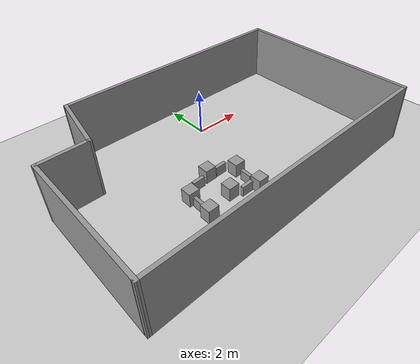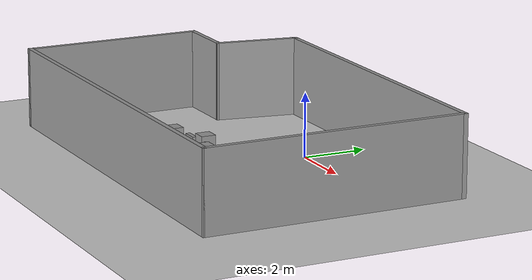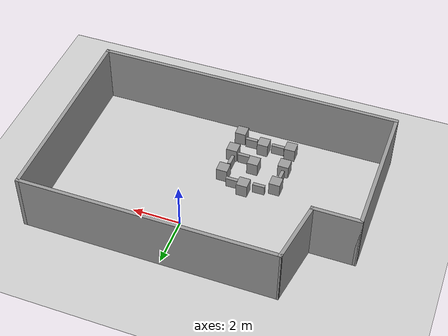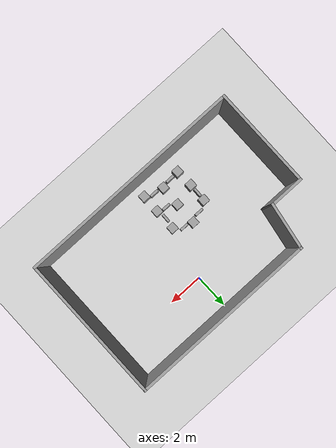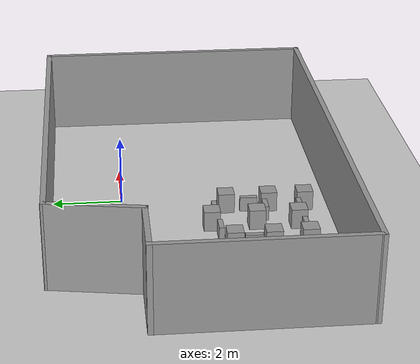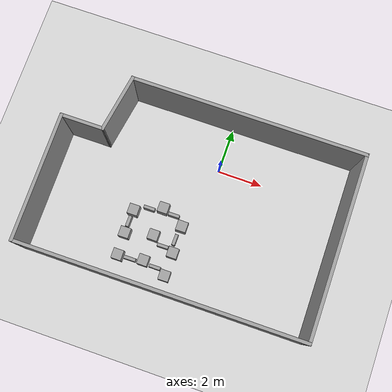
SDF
<sdf version="1.7">
 <world name="lab211_with_boxes_s1_1">
  <light name="sun" type="directional">
   <pose>0 0 10 0 -0 0</pose>
   <diffuse>0.8 0.8 0.8 1</diffuse>
   <specular>0.2 0.2 0.2 1</specular>
   <attenuation>
    <range>1000</range>
    <constant>0.9</constant>
    <linear>0.01</linear>
    <quadratic>0.001</quadratic>
   </attenuation>
   <direction>-0.5 0.1 -0.9</direction>
   <spot><inner_angle>0</inner_angle><outer_angle>0</outer_angle><falloff>0</falloff></spot>
  </light>
  <model name="ground_plane">
   <static>1</static>
   <link name="link">
    <collision name="collision">
     <geometry><plane><normal>0 0 1</normal><size>100 100</size></plane></geometry>
     <surface>
      <contact><collide_bitmask>65535</collide_bitmask></contact>
      <friction><ode><mu>100</mu><mu2>50</mu2></ode></friction>
     </surface>
    </collision>
    <visual name="visual">
     <cast_shadows>0</cast_shadows>
     <geometry><plane><normal>0 0 1</normal><size>100 100</size></plane></geometry>
     <material>
      <script><uri>file://media/materials/scripts/gazebo.material</uri><name>Gazebo/Grey</name></script>
      <ambient>0.9 0.9 0.9 1</ambient>
      <diffuse>0.9 0.9 0.9 1</diffuse>
      <specular>0.9 0.9 0.9 1</specular>
      <emissive>0.4 0.4 0.4 1</emissive>
     </material>
    </visual>
   </link>
  </model>
  <gravity>0 0 -9.8</gravity>
  <magnetic_field>6e-06 2.3e-05 -4.2e-05</magnetic_field>
  <atmosphere type="adiabatic"/>
  <physics type="ode">
   <max_step_size>0.001</max_step_size>
   <real_time_factor>1</real_time_factor>
   <real_time_update_rate>1000</real_time_update_rate>
  </physics>
  <scene><ambient>0.4 0.4 0.4 1</ambient><background>0.7 0.7 0.7 1</background><shadows>1</shadows></scene>
  <audio><device>default</device></audio>
  <spherical_coordinates>
   <surface_model>EARTH_WGS84</surface_model>
   <latitude_deg>0</latitude_deg>
   <longitude_deg>0</longitude_deg>
   <elevation>0</elevation>
   <heading_deg>0</heading_deg>
  </spherical_coordinates>
  <model name="lab211_1">
   <pose>-0.64143 -1.97187 0 0 -0 0</pose>
   <link name="Wall_12">
    <collision name="Wall_12_Collision">
     <geometry><box><size>8.25 0.15 2.5</size></box></geometry>
     <pose>0 0 1.25 0 -0 0</pose>
    </collision>
    <visual name="Wall_12_Visual">
     <pose>0 0 1.25 0 -0 0</pose>
     <geometry><box><size>8.25 0.15 2.5</size></box></geometry>
     <material>
      <script><uri>file://media/materials/scripts/gazebo.material</uri><name>Gazebo/Grey</name></script>
      <ambient>0.9 0.9 0.9 1</ambient>
      <diffuse>0.9 0.9 0.9 1</diffuse>
      <specular>0.9 0.9 0.9 1</specular>
      <emissive>0.4 0.4 0.4 1</emissive>
      <ambient>0.9 0.9 0.9 1</ambient>
      <diffuse>0.9 0.9 0.9 1</diffuse>
      <specular>0.9 0.9 0.9 1</specular>
      <emissive>0.4 0.4 0.4 1</emissive>
     </material>
     <meta><layer>0</layer></meta>
    </visual>
    <pose>6.31146 3.1e-05 0 0 -0 1.5708</pose>
   </link>
   <link name="Wall_13">
    <collision name="Wall_13_Collision">
     <geometry><box><size>10.5 0.15 2.5</size></box></geometry>
     <pose>0 0 1.25 0 -0 0</pose>
    </collision>
    <visual name="Wall_13_Visual">
     <pose>0 0 1.25 0 -0 0</pose>
     <geometry><box><size>10.5 0.15 2.5</size></box></geometry>
     <material>
      <script><uri>file://media/materials/scripts/gazebo.material</uri><name>Gazebo/Grey</name></script>
      <ambient>0.9 0.9 0.9 1</ambient>
      <diffuse>0.9 0.9 0.9 1</diffuse>
      <specular>0.9 0.9 0.9 1</specular>
      <emissive>0.4 0.4 0.4 1</emissive>
     </material>
     <meta><layer>0</layer></meta>
    </visual>
    <pose>1.13646 4.05003 0 0 -0 3.14159</pose>
   </link>
   <link name="Wall_16">
    <collision name="Wall_16_Collision">
     <geometry><box><size>5.75 0.15 2.5</size></box></geometry>
     <pose>0 0 1.25 0 -0 0</pose>
    </collision>
    <visual name="Wall_16_Visual">
     <pose>0 0 1.25 0 -0 0</pose>
     <geometry><box><size>5.75 0.15 2.5</size></box></geometry>
     <material>
      <script><uri>file://media/materials/scripts/gazebo.material</uri><name>Gazebo/Grey</name></script>
      <ambient>0.9 0.9 0.9 1</ambient>
      <diffuse>0.9 0.9 0.9 1</diffuse>
      <specular>0.9 0.9 0.9 1</specular>
      <emissive>0.4 0.4 0.4 1</emissive>
     </material>
     <meta><layer>0</layer></meta>
    </visual>
    <pose>-6.31147 -1.26138 0 0 -0 -1.5708</pose>
   </link>
   <link name="Wall_18">
    <collision name="Wall_18_Collision">
     <geometry><box><size>12.7729 0.15 2.5</size></box></geometry>
     <pose>0 0 1.25 0 -0 0</pose>
    </collision>
    <visual name="Wall_18_Visual">
     <pose>0 0 1.25 0 -0 0</pose>
     <geometry><box><size>12.7729 0.15 2.5</size></box></geometry>
     <material>
      <script><uri>file://media/materials/scripts/gazebo.material</uri><name>Gazebo/Grey</name></script>
      <ambient>0.9 0.9 0.9 1</ambient>
      <diffuse>0.9 0.9 0.9 1</diffuse>
      <specular>0.9 0.9 0.9 1</specular>
      <emissive>0.4 0.4 0.4 1</emissive>
     </material>
     <meta><layer>0</layer></meta>
    </visual>
    <pose>-0 -4.05567 0 0 -0 0.000904</pose>
   </link>
   <link name="Wall_20">
    <collision name="Wall_20_Collision">
     <geometry><box><size>2 0.15 2.5</size></box></geometry>
     <pose>0 0 1.25 0 -0 0</pose>
    </collision>
    <visual name="Wall_20_Visual">
     <pose>0 0 1.25 0 -0 0</pose>
     <geometry><box><size>2 0.15 2.5</size></box></geometry>
     <material>
      <script><uri>file://media/materials/scripts/gazebo.material</uri><name>Gazebo/Grey</name></script>
      <ambient>0.9 0.9 0.9 1</ambient>
      <diffuse>0.9 0.9 0.9 1</diffuse>
      <specular>0.9 0.9 0.9 1</specular>
      <emissive>0.4 0.4 0.4 1</emissive>
     </material>
     <meta><layer>0</layer></meta>
    </visual>
    <pose>-5.38647 1.53862 0 0 -0 0</pose>
   </link>
   <link name="Wall_21">
    <collision name="Wall_21_Collision">
     <geometry><box><size>2.69677 0.15 2.5</size></box></geometry>
     <pose>0 0 1.25 0 -0 0</pose>
    </collision>
    <visual name="Wall_21_Visual">
     <pose>0 0 1.25 0 -0 0</pose>
     <geometry><box><size>2.69677 0.15 2.5</size></box></geometry>
     <material>
      <script><uri>file://media/materials/scripts/gazebo.material</uri><name>Gazebo/Grey</name></script>
      <ambient>0.9 0.9 0.9 1</ambient>
      <diffuse>0.9 0.9 0.9 1</diffuse>
      <specular>0.9 0.9 0.9 1</specular>
      <emissive>0.4 0.4 0.4 1</emissive>
     </material>
     <meta><layer>0</layer></meta>
    </visual>
    <pose>-4.25 2.79433 0 0 -0 1.40396</pose>
   </link>
   <static>1</static>
  </model>
  <model name="unit_box_clone">
   <pose>-3.02205 -4.03785 0.294122 0 0 -0.002878</pose>
   <link name="link">
    <inertial>
     <mass>1</mass>
     <inertia>
      <ixx>0.166667</ixx>
      <ixy>0</ixy>
      <ixz>0</ixz>
      <iyy>0.166667</iyy>
      <iyz>0</iyz>
      <izz>0.166667</izz>
     </inertia>
    </inertial>
    <collision name="collision"><geometry><box><size>0.460991 0.46303 0.588244</size></box></geometry></collision>
    <visual name="visual">
     <geometry><box><size>0.460991 0.46303 0.588244</size></box></geometry>
     <material>
      <script><name>Gazebo/Grey</name><uri>file://media/materials/scripts/gazebo.material</uri></script>
     </material>
    </visual>
   </link>
  </model>
  <model name="unit_box_clone_0">
   <pose>-2.98154 -5.04818 0.294122 0 -0 0.005357</pose>
   <link name="link">
    <inertial>
     <mass>1</mass>
     <inertia>
      <ixx>0.166667</ixx>
      <ixy>0</ixy>
      <ixz>0</ixz>
      <iyy>0.166667</iyy>
      <iyz>0</iyz>
      <izz>0.166667</izz>
     </inertia>
    </inertial>
    <collision name="collision"><geometry><box><size>0.460991 0.46303 0.588244</size></box></geometry></collision>
    <visual name="visual">
     <geometry><box><size>0.460991 0.46303 0.588244</size></box></geometry>
     <material>
      <script><name>Gazebo/Grey</name><uri>file://media/materials/scripts/gazebo.material</uri></script>
     </material>
    </visual>
   </link>
  </model>
  <model name="unit_box_clone_1">
   <pose>-1.78988 -3.73906 0.294122 0 -0 4e-06</pose>
   <link name="link">
    <inertial>
     <mass>1</mass>
     <inertia>
      <ixx>0.166667</ixx>
      <ixy>0</ixy>
      <ixz>0</ixz>
      <iyy>0.166667</iyy>
      <iyz>0</iyz>
      <izz>0.166667</izz>
     </inertia>
    </inertial>
    <collision name="collision"><geometry><box><size>0.460991 0.46303 0.588244</size></box></geometry></collision>
    <visual name="visual">
     <geometry><box><size>0.460991 0.46303 0.588244</size></box></geometry>
     <material>
      <script><name>Gazebo/Grey</name><uri>file://media/materials/scripts/gazebo.material</uri></script>
     </material>
    </visual>
   </link>
  </model>
  <model name="unit_box_clone_2">
   <pose>-1.83871 -4.91826 0.294122 0 -0 0.002243</pose>
   <link name="link">
    <inertial>
     <mass>1</mass>
     <inertia>
      <ixx>0.166667</ixx>
      <ixy>0</ixy>
      <ixz>0</ixz>
      <iyy>0.166667</iyy>
      <iyz>0</iyz>
      <izz>0.166667</izz>
     </inertia>
    </inertial>
    <collision name="collision"><geometry><box><size>0.460991 0.46303 0.588244</size></box></geometry></collision>
    <visual name="visual">
     <geometry><box><size>0.460991 0.46303 0.588244</size></box></geometry>
     <material>
      <script><name>Gazebo/Grey</name><uri>file://media/materials/scripts/gazebo.material</uri></script>
     </material>
    </visual>
   </link>
  </model>
  <model name="unit_box_clone_3">
   <pose>-1.77528 -2.4605 0.294122 0 0 -0.007167</pose>
   <link name="link">
    <inertial>
     <mass>1</mass>
     <inertia>
      <ixx>0.166667</ixx>
      <ixy>0</ixy>
      <ixz>0</ixz>
      <iyy>0.166667</iyy>
      <iyz>0</iyz>
      <izz>0.166667</izz>
     </inertia>
    </inertial>
    <collision name="collision"><geometry><box><size>0.460991 0.46303 0.588244</size></box></geometry></collision>
    <visual name="visual">
     <geometry><box><size>0.460991 0.46303 0.588244</size></box></geometry>
     <material>
      <script><name>Gazebo/Grey</name><uri>file://media/materials/scripts/gazebo.material</uri></script>
     </material>
    </visual>
   </link>
  </model>
  <model name="unit_box_clone_4">
   <pose>-0.735079 -4.20388 0.294122 0 -0 4e-06</pose>
   <link name="link">
    <inertial>
     <mass>1</mass>
     <inertia>
      <ixx>0.166667</ixx>
      <ixy>0</ixy>
      <ixz>0</ixz>
      <iyy>0.166667</iyy>
      <iyz>0</iyz>
      <izz>0.166667</izz>
     </inertia>
    </inertial>
    <collision name="collision"><geometry><box><size>0.460991 0.46303 0.588244</size></box></geometry></collision>
    <visual name="visual">
     <geometry><box><size>0.460991 0.46303 0.588244</size></box></geometry>
     <material>
      <script><name>Gazebo/Grey</name><uri>file://media/materials/scripts/gazebo.material</uri></script>
     </material>
    </visual>
   </link>
  </model>
  <model name="unit_box_clone_5">
   <pose>-0.740032 -2.97629 0.294122 0 -0 4e-06</pose>
   <link name="link">
    <inertial>
     <mass>1</mass>
     <inertia>
      <ixx>0.166667</ixx>
      <ixy>0</ixy>
      <ixz>0</ixz>
      <iyy>0.166667</iyy>
      <iyz>0</iyz>
      <izz>0.166667</izz>
     </inertia>
    </inertial>
    <collision name="collision"><geometry><box><size>0.460991 0.46303 0.588244</size></box></geometry></collision>
    <visual name="visual">
     <geometry><box><size>0.460991 0.46303 0.588244</size></box></geometry>
     <material>
      <script><name>Gazebo/Grey</name><uri>file://media/materials/scripts/gazebo.material</uri></script>
     </material>
    </visual>
   </link>
  </model>
  <model name="unit_box_clone_6">
   <pose>-0.748937 -5.25294 0.294122 0 0 -0.001143</pose>
   <link name="link">
    <inertial>
     <mass>1</mass>
     <inertia>
      <ixx>0.166667</ixx>
      <ixy>0</ixy>
      <ixz>0</ixz>
      <iyy>0.166667</iyy>
      <iyz>0</iyz>
      <izz>0.166667</izz>
     </inertia>
    </inertial>
    <collision name="collision"><geometry><box><size>0.460991 0.46303 0.588244</size></box></geometry></collision>
    <visual name="visual">
     <geometry><box><size>0.460991 0.46303 0.588244</size></box></geometry>
     <material>
      <script><name>Gazebo/Grey</name><uri>file://media/materials/scripts/gazebo.material</uri></script>
     </material>
    </visual>
   </link>
  </model>
  <model name="unit_box_clone_clone">
   <pose>-2.99337 -2.96914 0.294122 0 0 -0.002878</pose>
   <link name="link">
    <inertial>
     <mass>1</mass>
     <inertia>
      <ixx>0.166667</ixx>
      <ixy>0</ixy>
      <ixz>0</ixz>
      <iyy>0.166667</iyy>
      <iyz>0</iyz>
      <izz>0.166667</izz>
     </inertia>
    </inertial>
    <collision name="collision"><geometry><box><size>0.460991 0.46303 0.588244</size></box></geometry></collision>
    <visual name="visual">
     <geometry><box><size>0.460991 0.46303 0.588244</size></box></geometry>
     <material>
      <script><name>Gazebo/Grey</name><uri>file://media/materials/scripts/gazebo.material</uri></script>
     </material>
    </visual>
   </link>
  </model>
  <model name="unit_box_clone_7">
   <pose>-2.43268 -5.03933 0.21766 0 1e-06 0.005189</pose>
   <link name="link">
    <inertial>
     <mass>1</mass>
     <inertia>
      <ixx>0.166667</ixx>
      <ixy>0</ixy>
      <ixz>0</ixz>
      <iyy>0.166667</iyy>
      <iyz>0</iyz>
      <izz>0.166667</izz>
     </inertia>
    </inertial>
    <collision name="collision">
     <geometry><box><size>0.538435 0.140773 0.435321</size></box></geometry>
    </collision>
    <visual name="visual">
     <geometry><box><size>0.538435 0.140773 0.435321</size></box></geometry>
     <material>
      <script><name>Gazebo/Grey</name><uri>file://media/materials/scripts/gazebo.material</uri></script>
     </material>
    </visual>
   </link>
  </model>
  <model name="unit_box_clone_7_clone_0">
   <pose>-2.37711 -2.65629 0.217661 1e-06 -2e-06 0.005213</pose>
   <link name="link">
    <inertial>
     <mass>1</mass>
     <inertia>
      <ixx>0.166667</ixx>
      <ixy>0</ixy>
      <ixz>0</ixz>
      <iyy>0.166667</iyy>
      <iyz>0</iyz>
      <izz>0.166667</izz>
     </inertia>
    </inertial>
    <collision name="collision">
     <geometry><box><size>0.505956 0.140773 0.435321</size></box></geometry>
    </collision>
    <visual name="visual">
     <geometry><box><size>0.505956 0.140773 0.435321</size></box></geometry>
     <material>
      <script><name>Gazebo/Grey</name><uri>file://media/materials/scripts/gazebo.material</uri></script>
     </material>
    </visual>
   </link>
  </model>
  <model name="unit_box_clone_7_clone_1">
   <pose>-1.2446 -2.60043 0.217661 0 -0 0.003522</pose>
   <link name="link">
    <inertial>
     <mass>1</mass>
     <inertia>
      <ixx>0.166667</ixx>
      <ixy>0</ixy>
      <ixz>0</ixz>
      <iyy>0.166667</iyy>
      <iyz>0</iyz>
      <izz>0.166667</izz>
     </inertia>
    </inertial>
    <collision name="collision">
     <geometry><box><size>0.501837 0.140773 0.435321</size></box></geometry>
    </collision>
    <visual name="visual">
     <geometry><box><size>0.501837 0.140773 0.435321</size></box></geometry>
     <material>
      <script><name>Gazebo/Grey</name><uri>file://media/materials/scripts/gazebo.material</uri></script>
     </material>
    </visual>
   </link>
  </model>
  <model name="unit_box_clone_7_clone_0_clone_clone_clone">
   <pose>-3.03963 -3.50338 0.217656 0 3e-06 -1.59551</pose>
   <link name="link">
    <inertial>
     <mass>1</mass>
     <inertia>
      <ixx>0.166667</ixx>
      <ixy>0</ixy>
      <ixz>0</ixz>
      <iyy>0.166667</iyy>
      <iyz>0</iyz>
      <izz>0.166667</izz>
     </inertia>
    </inertial>
    <collision name="collision">
     <geometry><box><size>0.495619 0.140773 0.435321</size></box></geometry>
    </collision>
    <visual name="visual">
     <geometry><box><size>0.495619 0.140773 0.435321</size></box></geometry>
     <material>
      <script><name>Gazebo/Grey</name><uri>file://media/materials/scripts/gazebo.material</uri></script>
     </material>
    </visual>
   </link>
  </model>
  <model name="unit_box_clone_7_clone_1_clone">
   <pose>-1.27263 -5.0361 0.21766 0 -0 0.003824</pose>
   <link name="link">
    <inertial>
     <mass>1</mass>
     <inertia>
      <ixx>0.166667</ixx>
      <ixy>0</ixy>
      <ixz>0</ixz>
      <iyy>0.166667</iyy>
      <iyz>0</iyz>
      <izz>0.166667</izz>
     </inertia>
    </inertial>
    <collision name="collision">
     <geometry><box><size>0.501837 0.140773 0.435321</size></box></geometry>
    </collision>
    <visual name="visual">
     <geometry><box><size>0.501837 0.140773 0.435321</size></box></geometry>
     <material>
      <script><name>Gazebo/Grey</name><uri>file://media/materials/scripts/gazebo.material</uri></script>
     </material>
    </visual>
   </link>
  </model>
  <model name="unit_box_clone_7_clone_1_clone_0">
   <pose>-1.25133 -4.0554 0.217661 0 -0 0.003522</pose>
   <link name="link">
    <inertial>
     <mass>1</mass>
     <inertia>
      <ixx>0.166667</ixx>
      <ixy>0</ixy>
      <ixz>0</ixz>
      <iyy>0.166667</iyy>
      <iyz>0</iyz>
      <izz>0.166667</izz>
     </inertia>
    </inertial>
    <collision name="collision">
     <geometry><box><size>0.501837 0.140773 0.435321</size></box></geometry>
    </collision>
    <visual name="visual">
     <geometry><box><size>0.501837 0.140773 0.435321</size></box></geometry>
     <material>
      <script><name>Gazebo/Grey</name><uri>file://media/materials/scripts/gazebo.material</uri></script>
     </material>
    </visual>
   </link>
  </model>
  <model name="unit_box_clone_7_clone_0_clone_clone_clone_clone">
   <pose>-0.837913 -3.62272 0.217658 0 1.2e-05 -1.59559</pose>
   <link name="link">
    <inertial>
     <mass>1</mass>
     <inertia>
      <ixx>0.166667</ixx>
      <ixy>0</ixy>
      <ixz>0</ixz>
      <iyy>0.166667</iyy>
      <iyz>0</iyz>
      <izz>0.166667</izz>
     </inertia>
    </inertial>
    <collision name="collision">
     <geometry><box><size>0.495619 0.140773 0.435321</size></box></geometry>
    </collision>
    <visual name="visual">
     <geometry><box><size>0.495619 0.140773 0.435321</size></box></geometry>
     <material>
      <script><name>Gazebo/Grey</name><uri>file://media/materials/scripts/gazebo.material</uri></script>
     </material>
    </visual>
   </link>
  </model>
 </world>
</sdf>
